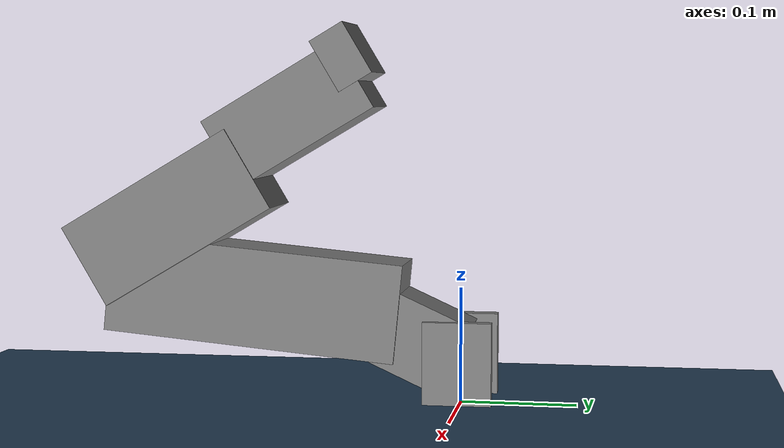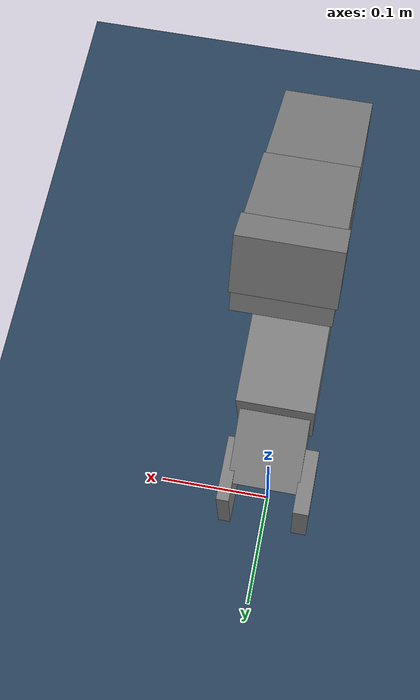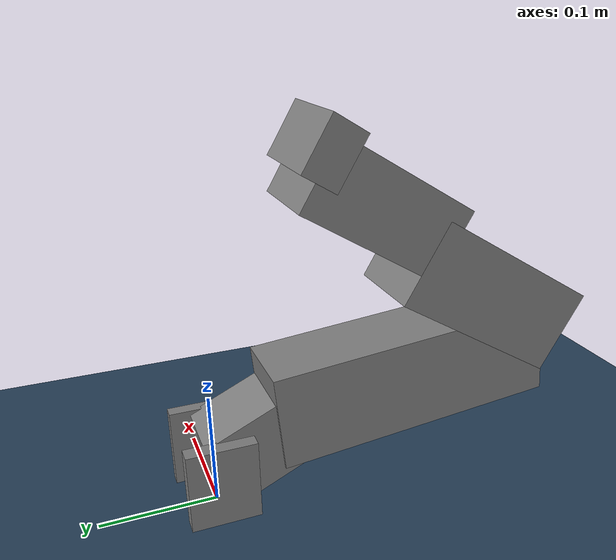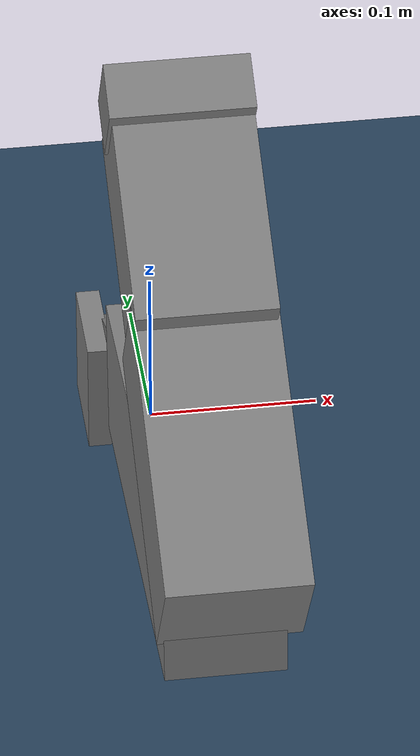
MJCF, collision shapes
<mujoco model="Robot">
  <compiler angle="radian" meshdir="./meshes"/>
  <option timestep="0.0005" integrator="RK4" />
  <extension>
    <plugin plugin="mujoco.pid">
      <instance name="rev1_pid">
        <config key="kp" value="20.0"/>
        <config key ="ki" value="10.0"/>
        <config key="kd" value="2"/>
        <config key="slewmax" value="3" />
        <config key="imax" value="1"/>
      </instance>
      <instance name="rev2_pid">
        <config key="kp" value="14.0"/>
        <config key ="ki" value="10.0"/>
        <config key="kd" value="5"/>
        <config key="slewmax" value="3" />
        <config key="imax" value="1"/>
      </instance>
      <instance name="rev3_pid">
        <config key="kp" value="20.0"/>
        <config key ="ki" value="10.0"/>
        <config key="kd" value="1"/>
        <config key="slewmax" value="3" />
        <config key="imax" value="1"/>
      </instance>
      <instance name="rev4_pid">
        <config key="kp" value="15.0"/>
        <config key ="ki" value="10.0"/>
        <config key="kd" value="1"/>
        <config key="slewmax" value="3" />
        <config key="imax" value="1"/>
      </instance>
      <instance name="rev5_pid">
        <config key="kp" value="15.0"/>
        <config key ="ki" value="10.0"/>
        <config key="kd" value="0.1"/>
        <config key="slewmax" value="3" />
        <config key="imax" value="1"/>
      </instance>
      <instance name="rev6_pid">
        <config key="kp" value="15.0"/>
        <config key ="ki" value="10.0"/>
        <config key="kd" value="0.01"/>
        <config key="slewmax" value="3" />
        <config key="imax" value="1"/>
      </instance>
    </plugin>
  </extension>

  <asset>
    <mesh name="base_link" file="base_link.stl" scale="0.001 0.001 0.001"/>
    <mesh name="J2_v1_1" file="J2_v1_1.stl" scale="0.001 0.001 0.001"/>
    <mesh name="J3_v1_1" file="J3_v1_1.stl" scale="0.001 0.001 0.001"/>
    <mesh name="J4_v1_1" file="J4_v1_1.stl" scale="0.001 0.001 0.001"/>
    <mesh name="J5_v1_1" file="J5_v1_1.stl" scale="0.001 0.001 0.001"/>
    <mesh name="J6_v1_1" file="J6_v1_1.stl" scale="0.001 0.001 0.001"/>
    <mesh name="J7_v1_1" file="J7_v1_1.stl" scale="0.001 0.001 0.001"/>
    <mesh name="grip_attach_1" file="grip_attach_1.stl" scale="0.001 0.001 0.001"/>
    <mesh name="left_jaw_1" file="left_jaw_1.stl" scale="0.001 0.001 0.001"/>
    <mesh name="right_jaw_1" file="right_jaw_1.stl" scale="0.001 0.001 0.001"/>
    <texture type="2d" name="grid" builtin="checker" mark="edge" rgb1="0.1 0.2 0.3" rgb2="0.2 0.3 0.4" markrgb="0.2 0.3 0.4" width="300" height="300"/>
    <material name="grid" texture="grid" texuniform="true" reflectance="0.0"/>
  </asset>
  <worldbody>
    <geom contype="0" conaffinity="0" type="mesh" rgba="0.7 0.7 0.7 1" mesh="base_link"/>
    <body name="link1" pos="0 0 0.00">
      <inertial pos="0.00228623 -0.000216833 0.0275609" quat="0.525931 0.473613 0.486121 0.512615" mass="0.495525" diaginertia="0.000722477 0.000595661 0.000315904"/>
      <joint name="rev1" pos="0 0 0" axis="0 0 1" range="-2.356194 2.356194"/>
      <geom contype="0" conaffinity="0" pos="0 0 0.00226" quat="1 0 0 0" type="mesh" rgba="0.7 0.7 0.7 1" mesh="J2_v1_1"/>
      <geom size="0.007 0.0294959 0.0355" pos="-0.034 0 0.03875" type="box"/>
      <geom size="0.005625 0.0294959 0.0355" pos="0.035375 0 0.03875" type="box"/>
      <body name="link2" pos="0.02975 0 0.04475" quat="0.5 -0.5 0.5 -0.5">
        <inertial pos="0.0474133 -0.0127813 -0.027" quat="0.453464 0.542559 0.453464 0.542559" mass="0.195626" diaginertia="9.04614e-05 7.98758e-05 5.99966e-05"/>
        <joint name="rev2" pos="0 0 0" axis="0 0 1" range="-3.14 0"/>
        <geom size="0.0315 0.0333159 0.032747" pos="0.0321835 -0.00889003 -0.027" quat="0.382527 -0.594704 -0.382527 -0.594704" type="box"/>
        <body name="link3" pos="0.0591625 -0.0158545 -0.027" quat="-0.701161 -0.0915019 -0.701161 0.0915019">
          <inertial pos="0.000118275 0.016179 0.122898" quat="0.502729 0.497444 -0.497459 0.502342" mass="0.305221" diaginertia="0.0016817 0.00153053 0.000240914"/>
          <joint name="rev3" pos="0 0 0" axis="0 0 1" range="-2.0944 2.0944"/>
          <geom size="0.0345 0.129124 0.0426943" pos="0 0.00119351 0.124124" quat="0.763222 0.646136 0 0" type="box"/>
          <body name="link4" pos="0.0270047 0 0.2455" quat="0.705031 -0.0541377 0.705031 -0.0541377">
            <inertial pos="0.0159771 -0.0239328 -0.0271701" quat="0.580447 0.411112 -0.466819 0.525498" mass="0.444319" diaginertia="0.00137305 0.000926782 0.000619899"/>
            <joint name="rev4" pos="0 0 0" axis="0 0 1" range="-2.0 0"/>
            <geom size="0.0410047 0.0852527 0.0393502" pos="0.0386491 -0.0413724 -0.0297547" quat="0.632391 0.316357 -0.632391 0.316357" type="box"/>
            <body name="link5" pos="0.0909178 -0.101815 -0.0297547" quat="0.645424 -0.288838 -0.645424 -0.288838">
              <inertial pos="-0.000903569 -0.00156057 -0.0298803" quat="0.587464 0.432339 -0.433524 0.529175" mass="0.263679" diaginertia="0.000483653 0.000368144 0.000203888"/>
              <joint name="rev5" pos="0 0 0" axis="0 0 1" range="-2.0944 2.0944"/>
              <geom size="0.04015 0.0678986 0.0330344" pos="0.00065 0.00664939 -0.0602639" quat="0.634004 0.77333 0 0" type="box"/>
              <body name="link6" pos="0.0355 0 -0.12105" quat="0.703667 0.0696631 0.703667 0.0696631">
                <inertial pos="0.00603009 0.000195868 -0.0339849" quat="0.292252 0.646217 0.295416 0.640095" mass="0.0392424" diaginertia="4.33169e-05 4.20513e-05 5.73168e-06"/>
                <joint name="rev6" pos="0 0 0" axis="0 0 1" range="-0.3 1.5708"/>
                <geom size="0.0413 0.0250181 0.0164941" pos="0.0068895 0.000417693 -0.034" quat="0 0.707107 0 0.707107" type="box"/>
              </body>
            </body>
          </body>
        </body>
      </body>
    </body>
    <geom name="ground" size="0.5 0.5 0.1" type="plane" material="grid"/>
  </worldbody>
  <actuator>
    <plugin joint="rev1" name="rev1_actuator" plugin="mujoco.pid" instance="rev1_pid" actdim="2" ctrllimited="true" ctrlrange="-2.356194 2.356194"/>
    <plugin joint="rev2" name="rev2_actuator" plugin="mujoco.pid" instance="rev2_pid" actdim="2" ctrllimited="true" ctrlrange="-3.14 0"/>
    <plugin joint="rev3" name="rev3_actuator" plugin="mujoco.pid" instance="rev3_pid" actdim="2" ctrllimited="true" ctrlrange="-2.0944 2.0944"/>
    <plugin joint="rev4" name="rev4_actuator" plugin="mujoco.pid" instance="rev4_pid" actdim="2" ctrllimited="true" ctrlrange="-2.0 0"/>
    <plugin joint="rev5" name="rev5_actuator" plugin="mujoco.pid" instance="rev5_pid" actdim="2" ctrllimited="true" ctrlrange="-2.0944 2.0944"/>
    <plugin joint="rev6" name="rev6_actuator" plugin="mujoco.pid" instance="rev6_pid" actdim="2" ctrllimited="true" ctrlrange="-0.3 1.5708"/>
  </actuator>
</mujoco>
